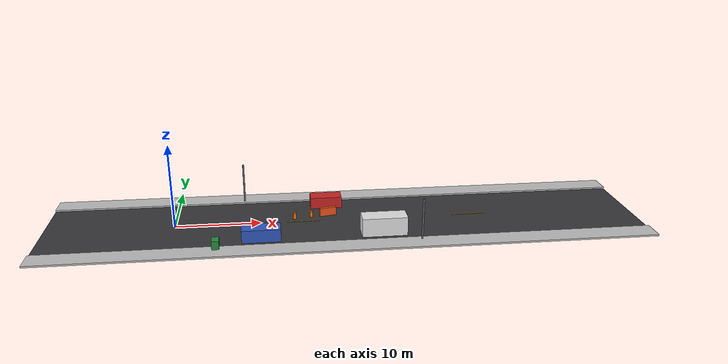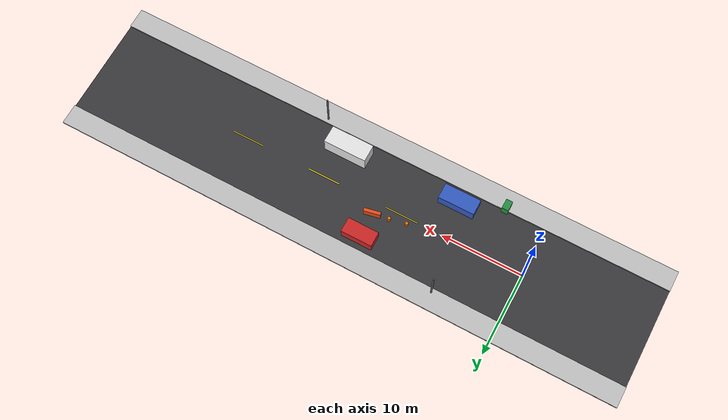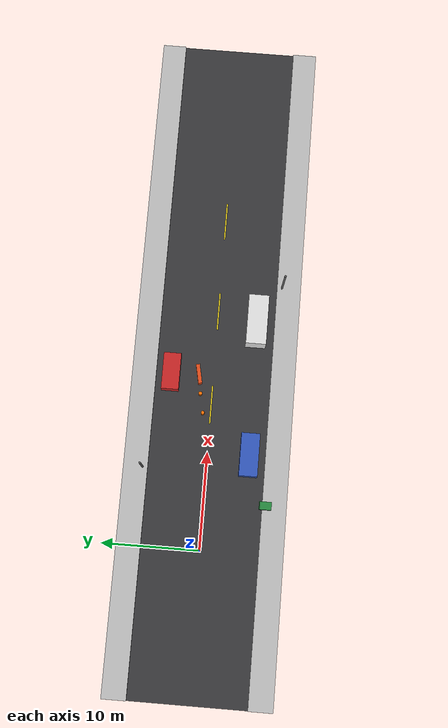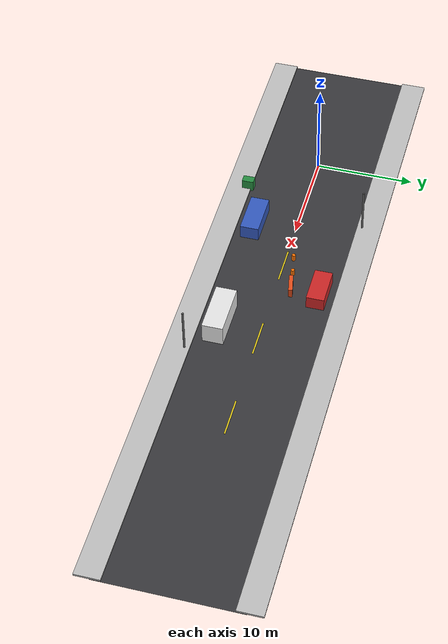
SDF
<?xml version="1.0"?>
<sdf version="1.9">
  <world name="city_street">
    <plugin filename="gz-sim-physics-system" name="gz::sim::systems::Physics"/>
    <plugin filename="gz-sim-user-commands-system" name="gz::sim::systems::UserCommands"/>
    <plugin filename="gz-sim-scene-broadcaster-system" name="gz::sim::systems::SceneBroadcaster"/>
    <plugin filename="gz-sim-sensors-system" name="gz::sim::systems::Sensors">
      <render_engine>ogre2</render_engine>
    </plugin>
    <plugin filename="gz-sim-imu-system" name="gz::sim::systems::Imu"/>

    <gravity>0 0 -9.81</gravity>
    <physics name="city_physics" type="ode">
      <max_step_size>0.002</max_step_size>
      <real_time_factor>1.0</real_time_factor>
      <real_time_update_rate>500</real_time_update_rate>
    </physics>

    <scene>
      <ambient>0.6 0.6 0.6 1.0</ambient>
      <background>0.65 0.75 0.85 1.0</background>
      <shadows>true</shadows>
      <grid>false</grid>
    </scene>

    <light name="sun" type="directional">
      <pose>20 10 35 0.4 -0.3 0.2</pose>
      <direction>-0.3 0.2 -0.9</direction>
      <diffuse>0.95 0.95 0.92 1.0</diffuse>
      <specular>0.3 0.3 0.3 1.0</specular>
      <attenuation><range>100</range></attenuation>
      <cast_shadows>true</cast_shadows>
    </light>

    <!-- Main Asphalt Road: 60m length (x: -10 to 50), 12m width (y: -6 to 6) -->
    <model name="road_ground">
      <static>true</static>
      <pose>20 0 0 0 0 0</pose>
      <link name="road_link">
        <collision name="collision">
          <geometry><plane><normal>0 0 1</normal><size>70 14</size></plane></geometry>
          <surface><friction><ode><mu>0.9</mu><mu2>0.9</mu2></ode></friction></surface>
        </collision>
        <visual name="road_visual">
          <geometry><plane><normal>0 0 1</normal><size>70 14</size></plane></geometry>
          <material>
            <ambient>0.15 0.15 0.16 1</ambient>
            <diffuse>0.22 0.22 0.23 1</diffuse>
          </material>
        </visual>
      </link>
    </model>

    <!-- Left Sidewalk & Curb (y = 6.75m, width = 2.5m) -->
    <model name="sidewalk_left">
      <static>true</static>
      <pose>20 7.25 0.1 0 0 0</pose>
      <link name="link">
        <collision name="collision">
          <geometry><box><size>70 2.5 0.2</size></box></geometry>
        </collision>
        <visual name="visual">
          <geometry><box><size>70 2.5 0.2</size></box></geometry>
          <material>
            <ambient>0.65 0.65 0.65 1</ambient>
            <diffuse>0.75 0.75 0.75 1</diffuse>
          </material>
        </visual>
      </link>
    </model>

    <!-- Right Sidewalk & Curb (y = -7.25m, width = 2.5m) -->
    <model name="sidewalk_right">
      <static>true</static>
      <pose>20 -7.25 0.1 0 0 0</pose>
      <link name="link">
        <collision name="collision">
          <geometry><box><size>70 2.5 0.2</size></box></geometry>
        </collision>
        <visual name="visual">
          <geometry><box><size>70 2.5 0.2</size></box></geometry>
          <material>
            <ambient>0.65 0.65 0.65 1</ambient>
            <diffuse>0.75 0.75 0.75 1</diffuse>
          </material>
        </visual>
      </link>
    </model>

    <!-- Center Line Dashes (Yellow) -->
    <model name="center_stripe_1">
      <static>true</static>
      <pose>5 0 0.005 0 0 0</pose>
      <link name="link"><visual name="v"><geometry><box><size>4.0 0.15 0.005</size></box></geometry><material><ambient>0.8 0.7 0.1 1</ambient><diffuse>0.9 0.8 0.1 1</diffuse></material></visual></link>
    </model>
    <model name="center_stripe_2">
      <static>true</static>
      <pose>15 0 0.005 0 0 0</pose>
      <link name="link"><visual name="v"><geometry><box><size>4.0 0.15 0.005</size></box></geometry><material><ambient>0.8 0.7 0.1 1</ambient><diffuse>0.9 0.8 0.1 1</diffuse></material></visual></link>
    </model>
    <model name="center_stripe_3">
      <static>true</static>
      <pose>25 0 0.005 0 0 0</pose>
      <link name="link"><visual name="v"><geometry><box><size>4.0 0.15 0.005</size></box></geometry><material><ambient>0.8 0.7 0.1 1</ambient><diffuse>0.9 0.8 0.1 1</diffuse></material></visual></link>
    </model>
    <model name="center_stripe_4">
      <static>true</static>
      <pose>35 0 0.005 0 0 0</pose>
      <link name="link"><visual name="v"><geometry><box><size>4.0 0.15 0.005</size></box></geometry><material><ambient>0.8 0.7 0.1 1</ambient><diffuse>0.9 0.8 0.1 1</diffuse></material></visual></link>
    </model>

    <!-- Parked Vehicle 1: Sedan on Right Lane (x=10, y=-4.2, yaw=0) -->
    <model name="parked_sedan_1">
      <static>true</static>
      <pose>10 -4.3 0.75 0 0 0</pose>
      <link name="chassis">
        <collision name="col"><geometry><box><size>4.4 1.9 1.5</size></box></geometry></collision>
        <visual name="vis">
          <geometry><box><size>4.4 1.9 1.5</size></box></geometry>
          <material><ambient>0.1 0.2 0.5 1</ambient><diffuse>0.2 0.35 0.75 1</diffuse></material>
        </visual>
      </link>
    </model>

    <!-- Parked Vehicle 2: Delivery Van on Right Lane (x=24, y=-4.1, yaw=0) -->
    <model name="parked_van">
      <static>true</static>
      <pose>24 -4.1 1.1 0 0 0</pose>
      <link name="body">
        <collision name="col"><geometry><box><size>5.2 2.1 2.2</size></box></geometry></collision>
        <visual name="vis">
          <geometry><box><size>5.2 2.1 2.2</size></box></geometry>
          <material><ambient>0.8 0.8 0.8 1</ambient><diffuse>0.9 0.9 0.9 1</diffuse></material>
        </visual>
      </link>
    </model>

    <!-- Parked Vehicle 3: Compact Car on Left Lane (x=18, y=4.4, yaw=0) -->
    <model name="parked_car_left">
      <static>true</static>
      <pose>18 4.4 0.7 0 0 0</pose>
      <link name="body">
        <collision name="col"><geometry><box><size>3.8 1.8 1.4</size></box></geometry></collision>
        <visual name="vis">
          <geometry><box><size>3.8 1.8 1.4</size></box></geometry>
          <material><ambient>0.6 0.1 0.1 1</ambient><diffuse>0.8 0.15 0.15 1</diffuse></material>
        </visual>
      </link>
    </model>

    <!-- Road Construction Zone / Obstacle Cluster in center lane (x=16 to 19, y=0.5 to 1.5) -->
    <model name="traffic_cone_1">
      <static>true</static>
      <pose>14 0.8 0.35 0 0 0</pose>
      <link name="link">
        <collision name="c"><geometry><cylinder><radius>0.18</radius><length>0.7</length></cylinder></geometry></collision>
        <visual name="v"><geometry><cylinder><radius>0.18</radius><length>0.7</length></cylinder></geometry><material><ambient>0.9 0.4 0 1</ambient><diffuse>1.0 0.45 0 1</diffuse></material></visual>
      </link>
    </model>
    <model name="traffic_cone_2">
      <static>true</static>
      <pose>16 1.2 0.35 0 0 0</pose>
      <link name="link">
        <collision name="c"><geometry><cylinder><radius>0.18</radius><length>0.7</length></cylinder></geometry></collision>
        <visual name="v"><geometry><cylinder><radius>0.18</radius><length>0.7</length></cylinder></geometry><material><ambient>0.9 0.4 0 1</ambient><diffuse>1.0 0.45 0 1</diffuse></material></visual>
      </link>
    </model>
    <model name="traffic_barrier">
      <static>true</static>
      <pose>18 1.5 0.5 0 0 0.2</pose>
      <link name="link">
        <collision name="c"><geometry><box><size>2.0 0.4 1.0</size></box></geometry></collision>
        <visual name="v"><geometry><box><size>2.0 0.4 1.0</size></box></geometry><material><ambient>0.8 0.2 0.1 1</ambient><diffuse>0.9 0.3 0.1 1</diffuse></material></visual>
      </link>
    </model>

    <!-- Pedestrian refuge island / crosswalk marker -->
    <model name="street_lamp_1">
      <static>true</static>
      <pose>8 6.5 2.5 0 0 0</pose>
      <link name="pole">
        <collision name="c"><geometry><cylinder><radius>0.1</radius><length>5.0</length></cylinder></geometry></collision>
        <visual name="v"><geometry><cylinder><radius>0.1</radius><length>5.0</length></cylinder></geometry><material><ambient>0.3 0.3 0.3 1</ambient><diffuse>0.4 0.4 0.4 1</diffuse></material></visual>
      </link>
    </model>
    <model name="street_lamp_2">
      <static>true</static>
      <pose>28 -6.5 2.5 0 0 0</pose>
      <link name="pole">
        <collision name="c"><geometry><cylinder><radius>0.1</radius><length>5.0</length></cylinder></geometry></collision>
        <visual name="v"><geometry><cylinder><radius>0.1</radius><length>5.0</length></cylinder></geometry><material><ambient>0.3 0.3 0.3 1</ambient><diffuse>0.4 0.4 0.4 1</diffuse></material></visual>
      </link>
    </model>

    <!-- Waste Containers along curb -->
    <model name="waste_bin_1">
      <static>true</static>
      <pose>5 -6.3 0.6 0 0 0</pose>
      <link name="bin">
        <collision name="c"><geometry><box><size>0.8 1.2 1.2</size></box></geometry></collision>
        <visual name="v"><geometry><box><size>0.8 1.2 1.2</size></box></geometry><material><ambient>0.1 0.4 0.2 1</ambient><diffuse>0.15 0.55 0.25 1</diffuse></material></visual>
      </link>
    </model>
  </world>
</sdf>
